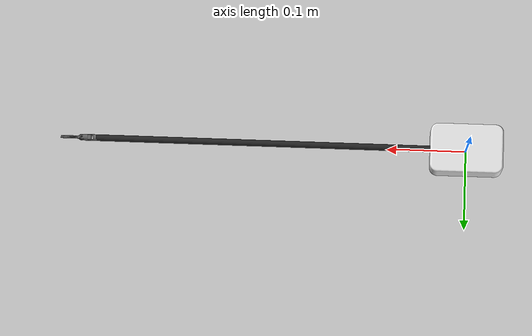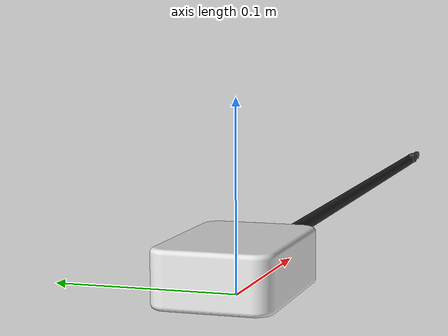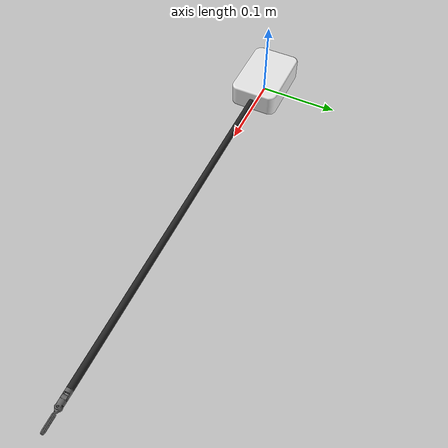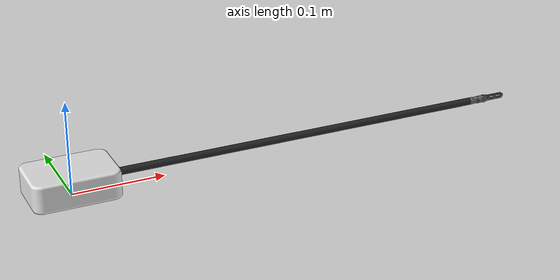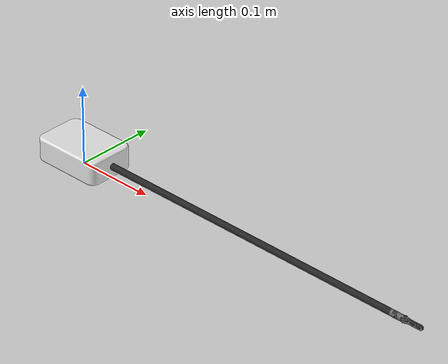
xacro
<?xml version="1.0"?>
<robot xmlns:xacro="http://www.ros.org/wiki/xacro"  name="da_vinci_intrument">

    <xacro:include filename="materials.xacro" />
    <xacro:include filename="inertia_matrices.xacro" />

    <xacro:property name="model_scale" value="0.001"/>

    <xacro:property name="damping_amount" value="10.0"/>
    <xacro:property name="friction_amount" value="10.0"/>

    <link name="world"></link>

    <joint name="base_joint" type="fixed">
        <origin xyz="0 0 0" rpy="0 0 0"/>
        <parent link="world"/>
        <child link="base_link"/>
    </joint>

    <link name="base_link">
        <visual>
            <origin xyz="0 0 0.015" rpy="0 0 0"/>
            <geometry>
                <mesh filename="file://$(find da_vinci_sim)/instrument_models/Casing.obj" scale="${model_scale} ${model_scale} ${model_scale}"/>
            </geometry>
            <material name="white"/>
        </visual>
        <collision>
            <origin xyz="0 0 0.015" rpy="0 0 0 "/>
            <geometry>
                <box size="0.092 0.063 0.030" />
            </geometry>
        </collision>
        <inertial>
            <origin xyz="0 0 0.015" rpy="0 0 0"/>
            <mass value="0.1450" />
            <inertia ixx="0.0001" ixy="0.000" ixz="0.000" iyy="0.0001" iyz="0.000" izz="0.0001" />
        </inertial>
    </link>

    <joint name="shaft_joint" type="fixed">
        <origin xyz="0.046 0 0.015" rpy="0 0 0"/>
        <parent link="base_link"/>
        <child link="shaft_link"/>
    </joint>

    <link name="shaft_link">
        <visual>
            <origin xyz="0 0 0" rpy="0 0 0"/>
            <geometry>
                <mesh filename="file://$(find da_vinci_sim)/instrument_models/Shaft.obj" scale="${model_scale} ${model_scale} ${model_scale}"/>
            </geometry>
            <material name="darkGrey"/>
        </visual>
        <collision>
            <origin xyz="${(423/2)/1000} 0 0" rpy="0 ${pi/2} 0"/>
            <geometry>
                <cylinder length="${423.5/1000}" radius="${4/1000}" />
            </geometry>
        </collision>
        <inertial>
            <origin xyz="${(423/2)/1000} 0 0" rpy="0 0 0"/>
            <mass value="0.0080" />
            <inertia ixx="0.0001" ixy="0.000" ixz="0.000" iyy="0.0001" iyz="0.000" izz="0.0001" />
        </inertial>
    </link>

    <joint name="shoulder_joint" type="revolute">
        <origin xyz="0.4235 0 0" rpy="0 0 0"/>
        <parent link="shaft_link"/>
        <child link="shoulder_link"/>
        <axis xyz="1 0 0"/>
        <limit lower="${-(pi/2)}" upper="${pi/2}" velocity="100" effort="100"/>
        <dynamics damping="${damping_amount}" friction="${friction_amount}"/>
    </joint>

    <link name="shoulder_link">
        <visual>
            <origin xyz="0 0 0" rpy="0 0 0"/>
            <geometry>
                <mesh filename="file://$(find da_vinci_sim)/instrument_models/GrasperBase.obj" scale="${model_scale} ${model_scale} ${model_scale}"/>
            </geometry>
            <material name="silver"/>
        </visual>
        <collision>
            <origin xyz="${2/1000} 0 0" rpy="0 ${pi/2} 0"/>
            <geometry>
                <cylinder length="${4/1000}" radius="${4/1000}" />
            </geometry>
        </collision>
        <inertial>
            <origin xyz="${2/1000} 0.0000 0.0000"/>
            <mass value="0.0080"/>
            <inertia ixx="0.0001" ixy="0.000" ixz="0.000" iyy="0.0001" iyz="0.000" izz="0.0001" />
        </inertial>
    </link>

    <joint name="wrist_joint" type="revolute">
        <origin xyz="0.008354 0 0" rpy="0 0 0"/>
        <parent link="shoulder_link"/>
        <child link="wrist_link"/>
        <axis xyz="0 1 0"/>
        <limit lower="${-(pi/2)}" upper="${pi/2}" velocity="100" effort="100"/>
        <dynamics damping="${damping_amount}" friction="${friction_amount}"/>
    </joint>

    <link name="wrist_link">
        <visual>
            <origin xyz="0 0 0" rpy="0 0 0"/>
            <geometry>
                <mesh filename="file://$(find da_vinci_sim)/instrument_models/GrasperWrist.obj" scale="${model_scale} ${model_scale} ${model_scale}"/>
            </geometry>
            <material name="silver"/>
        </visual>
        <collision>
            <origin xyz="${5.146/1000} 0 0" rpy="0 ${pi/2} 0"/>
            <geometry>
                <cylinder length="${15.584/1000}" radius="${4/1000}" />
            </geometry>
        </collision>
        <inertial>
            <origin xyz="${(15.584/2)/1000} 0.0000 0.0000"/>
            <mass value="0.0080"/>
            <inertia ixx="0.0001" ixy="0.000" ixz="0.000" iyy="0.0001" iyz="0.000" izz="0.0001" />
        </inertial>
    </link>

    <joint name="grasper_left_joint" type="revolute">
        <origin xyz="0.010292 0 0" rpy="0 0 0"/>
        <parent link="wrist_link"/>
        <child link="grasper_left_link"/>
        <axis xyz="0 0 1"/>
        <limit lower="${-(pi/2)}" upper="${pi/2}" velocity="100" effort="100"/>
        <dynamics damping="${damping_amount}" friction="${friction_amount}"/>
    </joint>

    <link name="grasper_left_link">
        <visual>
            <origin xyz="0 0 0" rpy="0 0 0"/>
            <geometry>
                <mesh filename="file://$(find da_vinci_sim)/instrument_models/GrasperLeft.obj" scale="${model_scale} ${model_scale} ${model_scale}"/>
            </geometry>
            <material name="silver"/>
        </visual>
        <collision>
            <origin xyz="0 0 0" rpy="0 0 0"/>
            <geometry>
                <mesh filename="file://$(find da_vinci_sim)/instrument_models/GrasperLeft.obj" scale="${model_scale} ${model_scale} ${model_scale}"/>
            </geometry>
        </collision>
        <inertial>
            <origin xyz="0 0 ${(3/2)/1000}" rpy="0 0 0"/>
            <mass value="0.0080" />
            <inertia ixx="0.0001" ixy="0.000" ixz="0.000" iyy="0.0001" iyz="0.000" izz="0.0001" />
        </inertial>
    </link>

    <joint name="grasper_right_joint" type="revolute">
        <parent link="wrist_link"/>
        <child link="grasper_right_link"/>
        <origin xyz="0.010292 0 0" rpy="0 0 0"/>
        <axis xyz="0 0 1"/>
        <limit lower="${-(pi/2)}" upper="${pi/2}" velocity="100" effort="100"/>
        <dynamics damping="${damping_amount}" friction="${friction_amount}"/>
    </joint>

    <link name="grasper_right_link">
        <visual>
            <origin xyz="0 0 0" rpy="0 0 0"/>
            <geometry>
                <mesh filename="file://$(find da_vinci_sim)/instrument_models/GrasperRight.obj" scale="${model_scale} ${model_scale} ${model_scale}"/>
            </geometry>
            <material name="silver"/>
        </visual>
        <collision>
            <origin xyz="${(10 + (7/2) + 1.5)/1000} ${-(((1.25/2)+0.25)/1000)} 0" rpy="0 0 0"/>
            <geometry>
                <box size="${20/1000} ${1.25/1000} ${6/1000}" />
            </geometry>
        </collision>
        <inertial>
            <origin xyz="0 0 ${-((3/2)/1000)}" rpy="0 0 0"/>
            <mass value="0.0080" />
            <inertia ixx="0.0001" ixy="0.000" ixz="0.000" iyy="0.0001" iyz="0.000" izz="0.0001" />
        </inertial>
    </link>

    <xacro:include filename="da_vinci_gazebo.xacro" />

</robot>

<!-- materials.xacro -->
<robot xmlns:xacro="http://www.ros.org/wiki/xacro" >

    <!-- This file is not a robot in and of itself, it just contains some useful tags that could be included in any robot -->

    <!-- Specify some colours -->

    <material name="white">
        <color rgba="0.9 0.9 0.9 1"/>
    </material>

    <material name="darkGrey">
        <color rgba="0.15 0.15 0.15 1"/>
    </material>

    <material name="silver">
        <color rgba="0.4 0.4 0.4 1"/>
    </material>

</robot>
